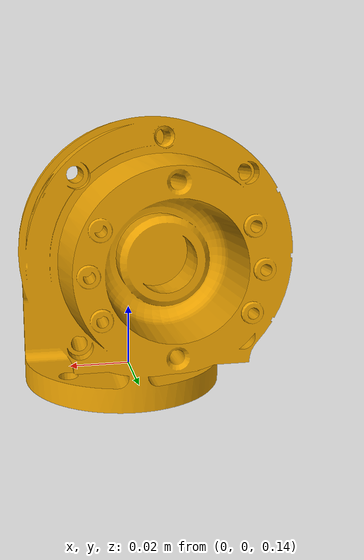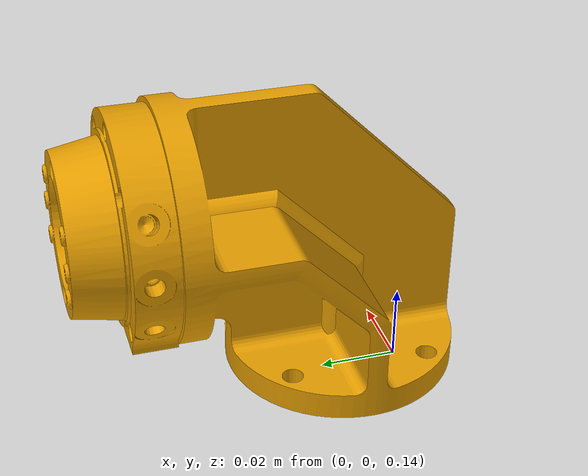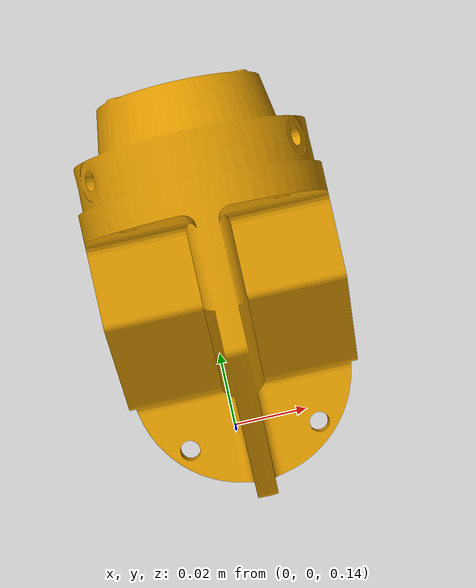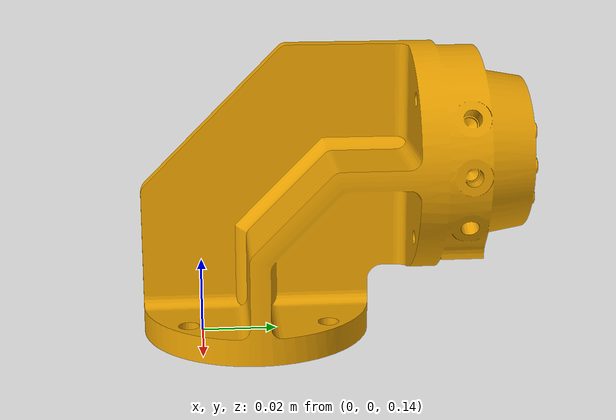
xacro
<?xml version='1.0'?>
<robot xmlns:xacro="http://www.ros.org/wiki/xacro" name="defaults">
    <link name="soft_hand_adaptor">
        <visual>
            <origin rpy="0 0 0" xyz="0 0 0"/>
            <geometry>
                <mesh filename="package://reconcycle_description/meshes/Soft_hand_adaptor_w_TC.obj" scale="0.001 0.001 0.001"/>
            </geometry>
        </visual>
        <collision>
            <origin rpy="0 0 0" xyz="0.0 0.0 0"/>
            <geometry>
                <mesh filename="package://reconcycle_description/meshes/Soft_hand_adaptor_w_TC.obj" scale ="0.001 0.001 0.001"/>
            </geometry>
        </collision>
        <inertial>
            <origin xyz="0 0 0" rpy="0 0 0"/>
            <mass value="3"/>
            <inertia ixx="3.0" ixy="0.0" ixz="0.0" iyy="3.0" iyz="0.0" izz="3.0"/>
        </inertial>
    </link>
</robot>
